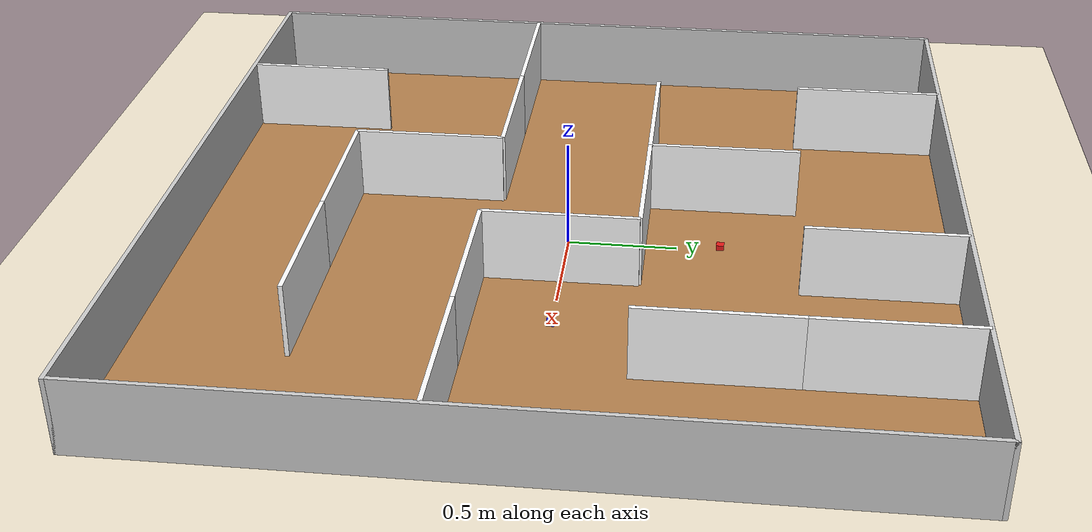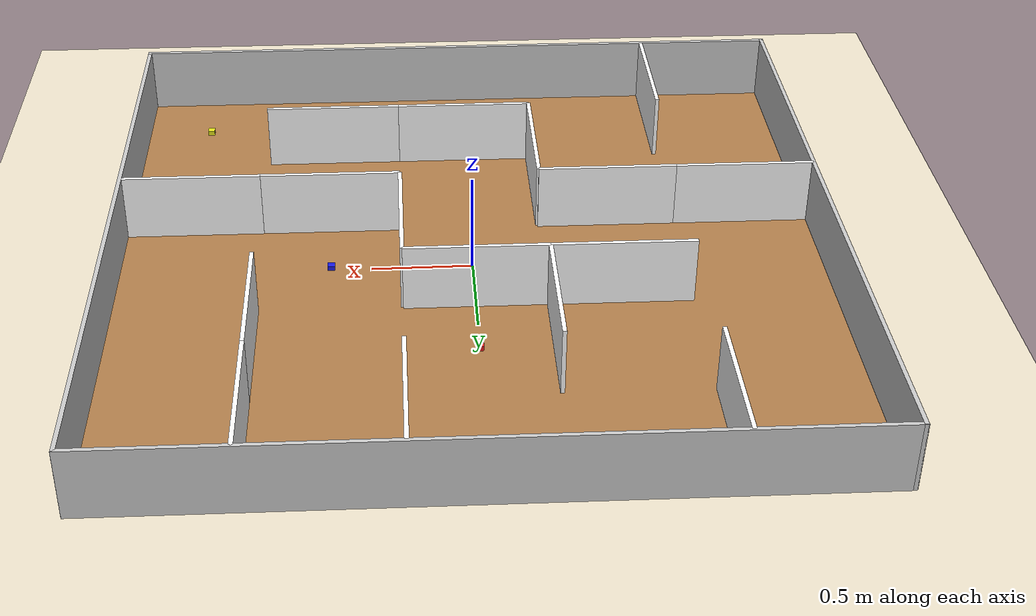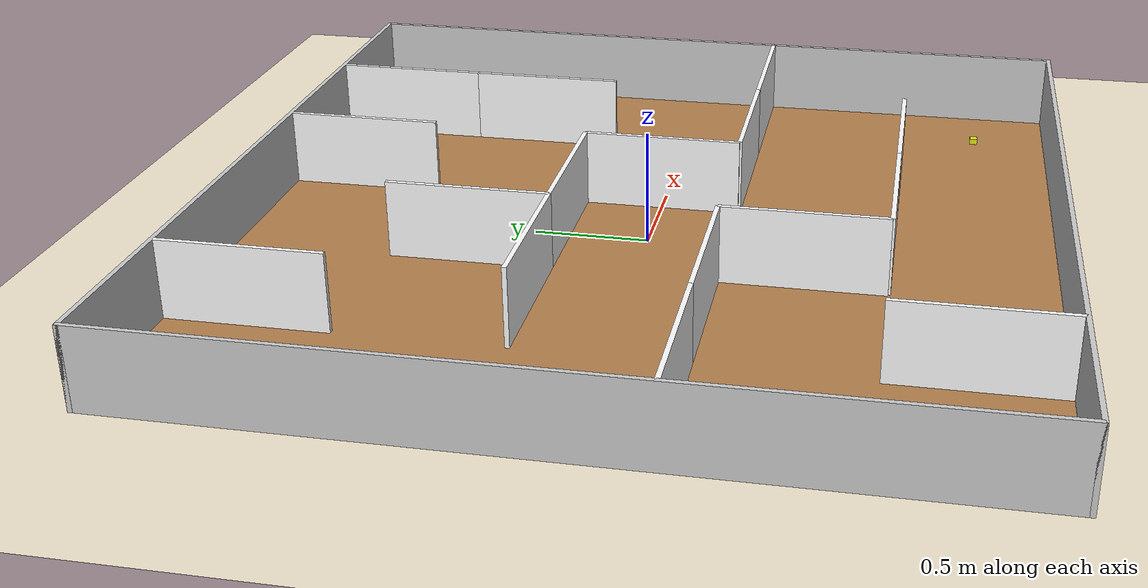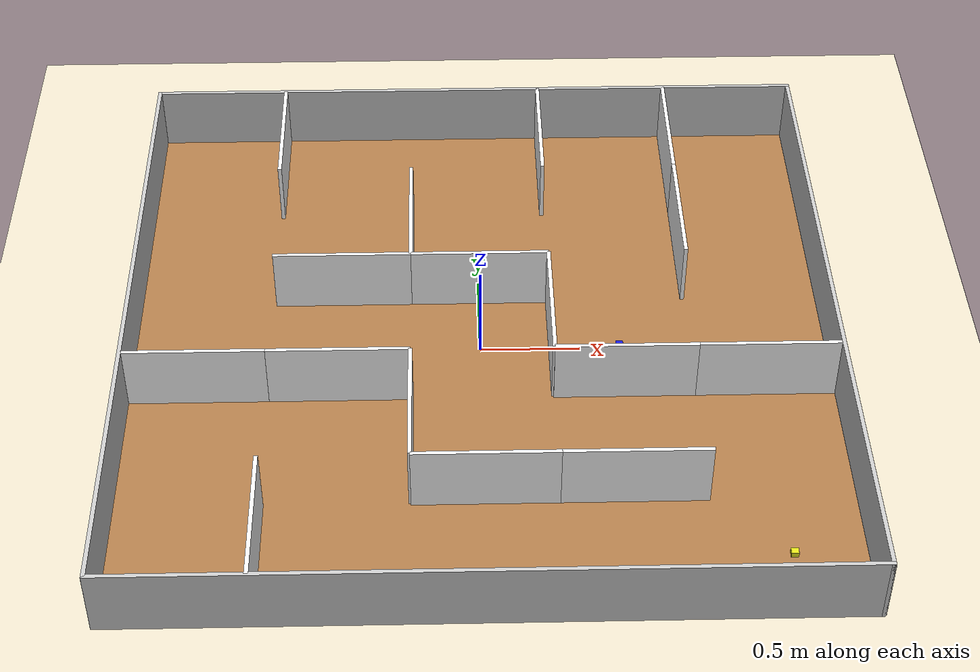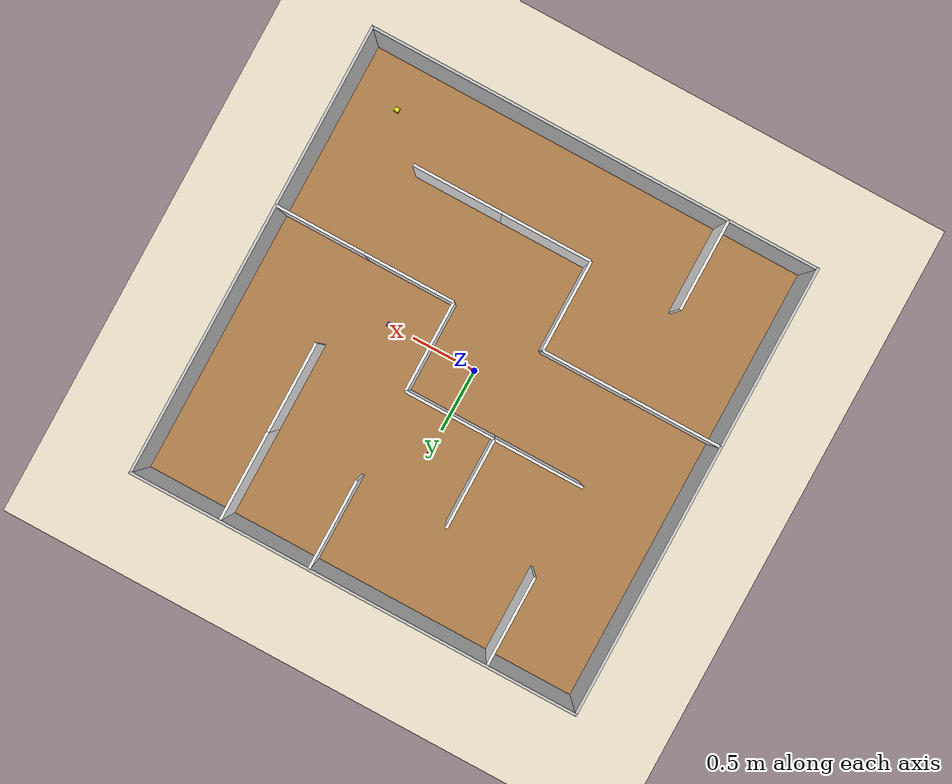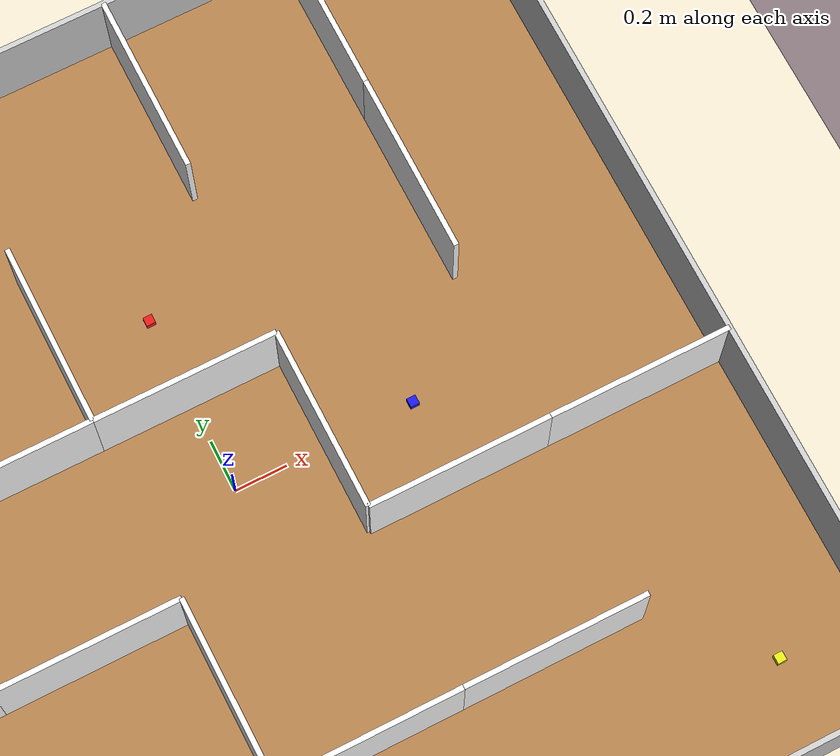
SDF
<?xml version="1.0" ?>
<sdf version="1.6">
  <world name="robot_world">
    <physics name="1ms" type="ignored">
      <max_step_size>0.001</max_step_size>
      <real_time_factor>1.0</real_time_factor>
      <real_time_update_rate>1000</real_time_update_rate>
    </physics>
    <plugin
      filename="ignition-gazebo-physics-system"
      name="gz::sim::systems::Physics">
      <engine>
        <filename>ignition-physics-dartsim-plugin</filename>
      </engine>
      <solver>
        <iterations>50</iterations>
      </solver>
    </plugin>
    <plugin
      filename="ignition-gazebo-user-commands-system"
      name="gz::sim::systems::UserCommands">
    </plugin>
    <plugin
      filename="ignition-gazebo-scene-broadcaster-system"
      name="gz::sim::systems::SceneBroadcaster">
    </plugin>
    <plugin
      filename="ignition-gazebo-contact-system"
      name="gz::sim::systems::Contact">
    </plugin>
    <gui fullscreen="0">
          <!-- 3D scene -->
          <plugin filename="MinimalScene" name="3D View">
            <gz-gui>
              <title>3D View</title>
              <property type="bool" key="showTitleBar">false</property>
              <property type="string" key="state">docked</property>
            </gz-gui>
            <engine>ogre2</engine>
            <scene>scene</scene>
            <ambient_light>0.4 0.4 0.4</ambient_light>
            <background_color>0.8 0.8 0.8</background_color>
            <camera_pose>-3.5 0 6 0 1.27 0</camera_pose>
            <camera_clip>
              <near>0.25</near>
              <far>25000</far>
            </camera_clip>
          </plugin>

          <!-- Insert simple shapes -->
          <plugin filename="Shapes" name="Shapes">
            <gz-gui>
              <property key="resizable" type="bool">false</property>
              <property key="x" type="double">0</property>
              <property key="y" type="double">0</property>
              <property key="width" type="double">250</property>
              <property key="height" type="double">50</property>
              <property key="state" type="string">floating</property>
              <property key="showTitleBar" type="bool">false</property>
              <property key="cardBackground" type="string">#666666</property>
            </gz-gui>
          </plugin>
          <!-- Translate / rotate -->
          <plugin filename="TransformControl" name="Transform control">
            <gz-gui>
              <property key="resizable" type="bool">false</property>
              <property key="x" type="double">0</property>
              <property key="y" type="double">50</property>
              <property key="width" type="double">250</property>
              <property key="height" type="double">50</property>
              <property key="state" type="string">floating</property>
              <property key="showTitleBar" type="bool">false</property>
              <property key="cardBackground" type="string">#777777</property>
            </gz-gui>
          </plugin>

          <!-- Entity tree -->
          <plugin filename="EntityTree" name="Entity tree">
            <gz-gui>
              <property type="string" key="state">docked_collapsed</property>
            </gz-gui>
          </plugin>

          <!-- Inspector -->
          <plugin filename="ComponentInspector" name="Component inspector">
            <gz-gui>
              <property type="string" key="state">docked_collapsed</property>
            </gz-gui>
          </plugin>

          <!-- World control -->
          <plugin filename="WorldControl" name="World control">
            <gz-gui>
              <title>World control</title>
              <property type="bool" key="showTitleBar">false</property>
              <property type="bool" key="resizable">false</property>
              <property type="double" key="height">72</property>
              <property type="double" key="width">121</property>
              <property type="double" key="z">1</property>

              <property type="string" key="state">floating</property>
              <anchors target="3D View">
                <line own="left" target="left"/>
                <line own="bottom" target="bottom"/>
              </anchors>
            </gz-gui>

            <play_pause>true</play_pause>
            <step>true</step>
            <start_paused>true</start_paused>
            <use_event>true</use_event>

          </plugin>

          <!-- Teleop -->
          <plugin filename="Teleop" name="ignition::gui::plugins::Teleop">
            <topic>/controller/cmd_vel</topic>
            <ignition-gui>
              <property type="bool" key="showTitleBar">true</property>
              <property type="string" key="state">docked</property>
              <property key="resizable" type="bool">true</property>
            </ignition-gui>
          </plugin>

          <!-- visualize lidar -->

          <!-- View angle -->
          <plugin filename="ViewAngle" name="View angle">
            <gz-gui>
              <property type="string" key="state">docked_collapsed</property>
            </gz-gui>
          </plugin>

          <!-- Plugins that add functionality to the scene -->
          <plugin filename="EntityContextMenuPlugin" name="Entity context menu">
          <gz-gui>
            <property key="state" type="string">floating</property>
            <property key="width" type="double">5</property>
            <property key="height" type="double">5</property>
            <property key="showTitleBar" type="bool">false</property>
          </gz-gui>
          </plugin>
          <plugin filename="GzSceneManager" name="Scene Manager">
          <gz-gui>
            <property key="resizable" type="bool">false</property>
            <property key="width" type="double">5</property>
            <property key="height" type="double">5</property>
            <property key="state" type="string">floating</property>
            <property key="showTitleBar" type="bool">false</property>
          </gz-gui>
          </plugin>
          <plugin filename="InteractiveViewControl" name="Interactive view control">
          <gz-gui>
            <property key="resizable" type="bool">false</property>
            <property key="width" type="double">5</property>
            <property key="height" type="double">5</property>
            <property key="state" type="string">floating</property>
            <property key="showTitleBar" type="bool">false</property>
          </gz-gui>
          </plugin>
          <plugin filename="CameraTracking" name="Camera Tracking">
          <gz-gui>
            <property key="resizable" type="bool">false</property>
            <property key="width" type="double">5</property>
            <property key="height" type="double">5</property>
            <property key="state" type="string">floating</property>
            <property key="showTitleBar" type="bool">false</property>
          </gz-gui>
          </plugin>
          <plugin filename="MarkerManager" name="Marker manager">
          <gz-gui>
            <property key="resizable" type="bool">false</property>
            <property key="width" type="double">5</property>
            <property key="height" type="double">5</property>
            <property key="state" type="string">floating</property>
            <property key="showTitleBar" type="bool">false</property>
          </gz-gui>
          </plugin>
          <plugin filename="SelectEntities" name="Select Entities">
          <gz-gui>
            <anchors target="Select entities">
              <line own="right" target="right"/>
              <line own="top" target="top"/>
            </anchors>
            <property key="resizable" type="bool">false</property>
            <property key="width" type="double">5</property>
            <property key="height" type="double">5</property>
            <property key="state" type="string">floating</property>
            <property key="showTitleBar" type="bool">false</property>
          </gz-gui>
          </plugin>
          <plugin filename="VisualizationCapabilities" name="Visualization Capabilities">
          <gz-gui>
            <property key="resizable" type="bool">false</property>
            <property key="width" type="double">5</property>
            <property key="height" type="double">5</property>
            <property key="state" type="string">floating</property>
            <property key="showTitleBar" type="bool">false</property>
          </gz-gui>
          </plugin>

          <plugin filename="Spawn" name="Spawn Entities">
          <gz-gui>
            <anchors target="Select entities">
              <line own="right" target="right"/>
              <line own="top" target="top"/>
            </anchors>
            <property key="resizable" type="bool">false</property>
            <property key="width" type="double">5</property>
            <property key="height" type="double">5</property>
            <property key="state" type="string">floating</property>
            <property key="showTitleBar" type="bool">false</property>
          </gz-gui>
          </plugin>

          <!-- World statistics -->
          <plugin filename="WorldStats" name="World stats">
          <gz-gui>
            <title>World stats</title>
            <property type="bool" key="showTitleBar">false</property>
            <property type="bool" key="resizable">false</property>
            <property type="double" key="height">110</property>
            <property type="double" key="width">290</property>
            <property type="double" key="z">1</property>

            <property type="string" key="state">floating</property>
            <anchors target="3D View">
              <line own="right" target="right"/>
              <line own="bottom" target="bottom"/>
            </anchors>
          </gz-gui>

          <sim_time>true</sim_time>
          <real_time>true</real_time>
          <real_time_factor>true</real_time_factor>
          <iterations>true</iterations>
          </plugin>

          <!-- Insert lights -->
          <plugin filename="Lights" name="Lights">
          <gz-gui>
            <property key="resizable" type="bool">false</property>
            <property key="x" type="double">250</property>
            <property key="y" type="double">0</property>
            <property key="width" type="double">150</property>
            <property key="height" type="double">50</property>
            <property key="state" type="string">floating</property>
            <property key="showTitleBar" type="bool">false</property>
            <property key="cardBackground" type="string">#666666</property>
          </gz-gui>
          </plugin>

          <!-- Screenshot -->
          <plugin filename="Screenshot" name="Screenshot">
          <gz-gui>
            <property key="resizable" type="bool">false</property>
            <property key="x" type="double">250</property>
            <property key="y" type="double">50</property>
            <property key="width" type="double">50</property>
            <property key="height" type="double">50</property>
            <property key="state" type="string">floating</property>
            <property key="showTitleBar" type="bool">false</property>
            <property key="cardBackground" type="string">#777777</property>
          </gz-gui>
          </plugin>

    </gui>
    <scene>
      <ambient>1.0 1.0 1.0</ambient>
      <background>0.8 0.8 0.8</background>
    </scene>
    <light type="directional" name="sun">
      <cast_shadows>true</cast_shadows>
      <pose>0 0 10 0 0 0</pose>
      <diffuse>0.8 0.8 0.8 1</diffuse>
      <specular>0.2 0.2 0.2 1</specular>
      <attenuation>
        <range>1000</range>
        <constant>0.9</constant>
        <linear>0.01</linear>
        <quadratic>0.001</quadratic>
      </attenuation>
      <direction>-0.5 0.1 -0.9</direction>
    </light>

    <model name="ground_plane">
      <static>true</static>
      <link name="link">
        <collision name="collision">
          <geometry>
            <plane>
              <normal>0 0 1</normal>
              <size>100 100</size>
            </plane>
          </geometry>
        </collision>
        <visual name="visual">
          <geometry>
            <plane>
              <normal>0 0 1</normal>
              <size>100 100</size>
            </plane>
          </geometry>
          <material>
            <ambient>0.94 0.90 0.81 1</ambient>
            <diffuse>0.94 0.90 0.81 1</diffuse>
            <specular>1 1 1 0</specular>
          </material>
        </visual>
      </link>
    </model>

    <!-- 迷宫模型 - 替换原来的RoboCup_Home -->
    <model name='maze_5x5_complex_connected'>
      <static>true</static>
      <pose>0 0 0 0 0 0</pose>
      <link name='maze_link'>

        <!-- === 地板与标记 === -->
        <visual name='floor_main'>
          <pose>0 0 0.005 0 0 0</pose>
          <geometry><box><size>3.5 3.5 0.01</size></box></geometry>
          <material><script><uri>file://media/materials/scripts/gazebo.material</uri><name>Gazebo/WoodFloor</name></script></material>
        </visual>
        <!-- 起点标记 (中心位置) -->
        <visual name='start_mark'>
          <pose>0 0 0.006 0 0 0</pose>
          <geometry><box><size>0.3 0.3 0.001</size></box></geometry>
          <material><ambient>0 1 0 1</ambient><diffuse>0 1 0 1</diffuse></material>
        </visual>
        <!-- 终点标记 -->
        <visual name='end_mark'>
          <pose>1.4 1.4 0.006 0 0 0</pose>
          <geometry><box><size>0.3 0.3 0.001</size></box></geometry>
          <material><ambient>1 0 0 1</ambient><diffuse>1 0 0 1</diffuse></material>
        </visual>

        <!-- 外墙 -->
        <visual name='wall_n'><pose>0 1.75 0.175 0 0 0</pose><geometry><box><size>3.52 0.02 0.35</size></box></geometry><material><ambient>0.8 0.8 0.8 1</ambient><diffuse>0.8 0.8 0.8 1</diffuse><specular>0.8 0.8 0.8 1</specular></material></visual>
        <collision name='col_n'><pose>0 1.75 0.175 0 0 0</pose><geometry><box><size>3.52 0.02 0.35</size></box></geometry></collision>
        <visual name='wall_s'><pose>0 -1.75 0.175 0 0 0</pose><geometry><box><size>3.52 0.02 0.35</size></box></geometry><material><ambient>0.8 0.8 0.8 1</ambient><diffuse>0.8 0.8 0.8 1</diffuse><specular>0.8 0.8 0.8 1</specular></material></visual>
        <collision name='col_s'><pose>0 -1.75 0.175 0 0 0</pose><geometry><box><size>3.52 0.02 0.35</size></box></geometry></collision>
        <visual name='wall_w'><pose>-1.75 0 0.175 0 0 0</pose><geometry><box><size>0.02 3.52 0.35</size></box></geometry><material><ambient>0.8 0.8 0.8 1</ambient><diffuse>0.8 0.8 0.8 1</diffuse><specular>0.8 0.8 0.8 1</specular></material></visual>
        <collision name='col_w'><pose>-1.75 0 0.175 0 0 0</pose><geometry><box><size>0.02 3.52 0.35</size></box></geometry></collision>
        <visual name='wall_e'><pose>1.75 0 0.175 0 0 0</pose><geometry><box><size>0.02 3.52 0.35</size></box></geometry><material><ambient>0.8 0.8 0.8 1</ambient><diffuse>0.8 0.8 0.8 1</diffuse><specular>0.8 0.8 0.8 1</specular></material></visual>
        <collision name='col_e'><pose>1.75 0 0.175 0 0 0</pose><geometry><box><size>0.02 3.52 0.35</size></box></geometry></collision>

        <!-- === 内部墙体 (Internal Walls) === -->
        <!-- 调整到70×70栅格，按照提供的迷宫布局 -->

        <!-- 纵向墙 (Vertical Walls) -->
        <!-- Row 0 (最下行) -->
        <visual name='v_r0_c01'> <pose>-1.05 -1.4 0.175 0 0 0</pose> <geometry><box><size>0.02 0.7 0.35</size></box></geometry> <material><ambient>1 1 1 1</ambient><diffuse>1 1 1 1</diffuse></material> </visual>
        <collision name='c_v_r0_c01'> <pose>-1.05 -1.4 0.175 0 0 0</pose> <geometry><box><size>0.02 0.7 0.35</size></box></geometry> </collision>

        <!-- Row 1 -->
        <visual name='v_r1_c12'> <pose>-0.35 -0.7 0.175 0 0 0</pose> <geometry><box><size>0.02 0.7 0.35</size></box></geometry> <material><ambient>1 1 1 1</ambient><diffuse>1 1 1 1</diffuse></material> </visual>
        <collision name='c_v_r1_c12'> <pose>-0.35 -0.7 0.175 0 0 0</pose> <geometry><box><size>0.02 0.7 0.35</size></box></geometry> </collision>

        <!-- Row 2 (中间行) -->
        <visual name='v_r2_c23'> <pose>0.35 0.0 0.175 0 0 0</pose> <geometry><box><size>0.02 0.7 0.35</size></box></geometry> <material><ambient>1 1 1 1</ambient><diffuse>1 1 1 1</diffuse></material> </visual>
        <collision name='c_v_r2_c23'> <pose>0.35 0.0 0.175 0 0 0</pose> <geometry><box><size>0.02 0.7 0.35</size></box></geometry> </collision>

        <!-- Row 3 -->
        <visual name='v_r3_c12'> <pose>-0.35 0.7 0.175 0 0 0</pose> <geometry><box><size>0.02 0.7 0.35</size></box></geometry> <material><ambient>1 1 1 1</ambient><diffuse>1 1 1 1</diffuse></material> </visual>
        <collision name='c_v_r3_c12'> <pose>-0.35 0.7 0.175 0 0 0</pose> <geometry><box><size>0.02 0.7 0.35</size></box></geometry> </collision>

        <visual name='v_r3_c34'> <pose>1.05 0.7 0.175 0 0 0</pose> <geometry><box><size>0.02 0.7 0.35</size></box></geometry> <material><ambient>1 1 1 1</ambient><diffuse>1 1 1 1</diffuse></material> </visual>
        <collision name='c_v_r3_c34'> <pose>1.05 0.7 0.175 0 0 0</pose> <geometry><box><size>0.02 0.7 0.35</size></box></geometry> </collision>

        <!-- Row 4 (最上行) -->
        <visual name='v_r4_c01'> <pose>-1.05 1.4 0.175 0 0 0</pose> <geometry><box><size>0.02 0.7 0.35</size></box></geometry> <material><ambient>1 1 1 1</ambient><diffuse>1 1 1 1</diffuse></material> </visual>
        <collision name='c_v_r4_c01'> <pose>-1.05 1.4 0.175 0 0 0</pose> <geometry><box><size>0.02 0.7 0.35</size></box></geometry> </collision>

        <visual name='v_r4_c23'> <pose>0.35 1.4 0.175 0 0 0</pose> <geometry><box><size>0.02 0.7 0.35</size></box></geometry> <material><ambient>1 1 1 1</ambient><diffuse>1 1 1 1</diffuse></material> </visual>
        <collision name='c_v_r4_c23'> <pose>0.35 1.4 0.175 0 0 0</pose> <geometry><box><size>0.02 0.7 0.35</size></box></geometry> </collision>

        <visual name='v_r4_c34'> <pose>1.05 1.4 0.175 0 0 0</pose> <geometry><box><size>0.02 0.7 0.35</size></box></geometry> <material><ambient>1 1 1 1</ambient><diffuse>1 1 1 1</diffuse></material> </visual>
        <collision name='c_v_r4_c34'> <pose>1.05 1.4 0.175 0 0 0</pose> <geometry><box><size>0.02 0.7 0.35</size></box></geometry> </collision>

        <!-- 横向墙 (Horizontal Walls) -->
        <!-- Col 0 (最左列) -->
        <visual name='h_c0_r12'> <pose>-1.4 -0.35 0.175 0 0 0</pose> <geometry><box><size>0.7 0.02 0.35</size></box></geometry> <material><ambient>1 1 1 1</ambient><diffuse>1 1 1 1</diffuse></material> </visual>
        <collision name='c_h_c0_r12'> <pose>-1.4 -0.35 0.175 0 0 0</pose> <geometry><box><size>0.7 0.02 0.35</size></box></geometry> </collision>

        <!-- Col 1 -->
        <visual name='h_c1_r12'> <pose>-0.7 -0.35 0.175 0 0 0</pose> <geometry><box><size>0.7 0.02 0.35</size></box></geometry> <material><ambient>1 1 1 1</ambient><diffuse>1 1 1 1</diffuse></material> </visual>
        <collision name='c_h_c1_r12'> <pose>-0.7 -0.35 0.175 0 0 0</pose> <geometry><box><size>0.7 0.02 0.35</size></box></geometry> </collision>

        <visual name='h_c1_r23'> <pose>-0.7 0.35 0.175 0 0 0</pose> <geometry><box><size>0.7 0.02 0.35</size></box></geometry> <material><ambient>1 1 1 1</ambient><diffuse>1 1 1 1</diffuse></material> </visual>
        <collision name='c_h_c1_r23'> <pose>-0.7 0.35 0.175 0 0 0</pose> <geometry><box><size>0.7 0.02 0.35</size></box></geometry> </collision>

        <!-- Col 2 (中间列) -->
        <visual name='h_c2_r01'> <pose>0.0 -1.05 0.175 0 0 0</pose> <geometry><box><size>0.7 0.02 0.35</size></box></geometry> <material><ambient>1 1 1 1</ambient><diffuse>1 1 1 1</diffuse></material> </visual>
        <collision name='c_h_c2_r01'> <pose>0.0 -1.05 0.175 0 0 0</pose> <geometry><box><size>0.7 0.02 0.35</size></box></geometry> </collision>

        <visual name='h_c2_r23'> <pose>0.0 0.35 0.175 0 0 0</pose> <geometry><box><size>0.7 0.02 0.35</size></box></geometry> <material><ambient>1 1 1 1</ambient><diffuse>1 1 1 1</diffuse></material> </visual>
        <collision name='c_h_c2_r23'> <pose>0.0 0.35 0.175 0 0 0</pose> <geometry><box><size>0.7 0.02 0.35</size></box></geometry> </collision>

        <!-- Col 3 -->
        <visual name='h_c3_r01'> <pose>0.7 -1.05 0.175 0 0 0</pose> <geometry><box><size>0.7 0.02 0.35</size></box></geometry> <material><ambient>1 1 1 1</ambient><diffuse>1 1 1 1</diffuse></material> </visual>
        <collision name='c_h_c3_r01'> <pose>0.7 -1.05 0.175 0 0 0</pose> <geometry><box><size>0.7 0.02 0.35</size></box></geometry> </collision>

        <visual name='h_c3_r12'> <pose>0.7 -0.35 0.175 0 0 0</pose> <geometry><box><size>0.7 0.02 0.35</size></box></geometry> <material><ambient>1 1 1 1</ambient><diffuse>1 1 1 1</diffuse></material> </visual>
        <collision name='c_h_c3_r12'> <pose>0.7 -0.35 0.175 0 0 0</pose> <geometry><box><size>0.7 0.02 0.35</size></box></geometry> </collision>

        <!-- Col 4 (最右列) -->
        <visual name='h_c4_r12'> <pose>1.4 -0.35 0.175 0 0 0</pose> <geometry><box><size>0.7 0.02 0.35</size></box></geometry> <material><ambient>1 1 1 1</ambient><diffuse>1 1 1 1</diffuse></material> </visual>
        <collision name='c_h_c4_r12'> <pose>1.4 -0.35 0.175 0 0 0</pose> <geometry><box><size>0.7 0.02 0.35</size></box></geometry> </collision>
      </link>
    </model>

    <!-- Demo pickup block: red cube at robot origin frame -->
    <model name='demo_block_red'>
      <pose>0.0 0.7 0.0175 0 0 0</pose>
      <static>false</static>
      <link name='body'>
        <inertial>
          <mass>0.03</mass>
          <inertia>
            <ixx>6.1e-06</ixx>
            <iyy>6.1e-06</iyy>
            <izz>6.1e-06</izz>
          </inertia>
        </inertial>
        <collision name='collision'>
          <geometry>
            <box>
              <size>0.035 0.035 0.035</size>
            </box>
          </geometry>
          <surface>
            <contact>
              <collide_bitmask>0xff</collide_bitmask>
              <ode>
                <kp>200000.0</kp>
                <kd>1000.0</kd>
                <max_vel>0.05</max_vel>
                <min_depth>0.001</min_depth>
              </ode>
            </contact>
            <friction>
              <ode>
                <mu>20.0</mu>
                <mu2>20.0</mu2>
                <slip1>0.0</slip1>
                <slip2>0.0</slip2>
              </ode>
              <torsional>
                <coefficient>10.0</coefficient>
                <use_patch_radius>true</use_patch_radius>
                <patch_radius>0.005</patch_radius>
              </torsional>
            </friction>
          </surface>
        </collision>
        <visual name='visual'>
          <geometry>
            <box>
              <size>0.035 0.035 0.035</size>
            </box>
          </geometry>
          <material>
            <ambient>0.9 0.1 0.1 1</ambient>
            <diffuse>0.9 0.1 0.1 1</diffuse>
          </material>
        </visual>
      </link>
    </model>

    <!-- Yellow cube elsewhere in maze -->
    <model name='demo_block_yellow'>
      <pose>1.4 -1.4 0.020 0 0 0</pose>
      <static>false</static>
      <link name='body'>
        <inertial>
          <mass>0.03</mass>
          <inertia>
            <ixx>6.1e-06</ixx>
            <iyy>6.1e-06</iyy>
            <izz>6.1e-06</izz>
          </inertia>
        </inertial>
        <collision name='collision'>
          <geometry>
            <box>
              <size>0.035 0.035 0.035</size>
            </box>
          </geometry>
          <surface>
            <contact>
              <collide_bitmask>0xff</collide_bitmask>
              <ode>
                <kp>200000.0</kp>
                <kd>1000.0</kd>
                <max_vel>0.05</max_vel>
                <min_depth>0.001</min_depth>
              </ode>
            </contact>
            <friction>
              <ode>
                <mu>20.0</mu>
                <mu2>20.0</mu2>
                <slip1>0.0</slip1>
                <slip2>0.0</slip2>
              </ode>
              <torsional>
                <coefficient>10.0</coefficient>
                <use_patch_radius>true</use_patch_radius>
                <patch_radius>0.005</patch_radius>
              </torsional>
            </friction>
          </surface>
        </collision>
        <visual name='visual'>
          <geometry>
            <box>
              <size>0.035 0.035 0.035</size>
            </box>
          </geometry>
          <material>
            <ambient>0.9 0.9 0.1 1</ambient>
            <diffuse>0.9 0.9 0.1 1</diffuse>
          </material>
        </visual>
      </link>
    </model>

    <!-- Additional blue cube elsewhere in maze -->
    <model name='demo_block_blue'>
      <pose>0.7 0.0 0.0175 0 0 0</pose>
      <static>false</static>
      <link name='body'>
        <inertial>
          <mass>0.03</mass>
          <inertia>
            <ixx>6.1e-06</ixx>
            <iyy>6.1e-06</iyy>
            <izz>6.1e-06</izz>
          </inertia>
        </inertial>
        <collision name='collision'>
          <geometry>
            <box>
              <size>0.035 0.035 0.035</size>
            </box>
          </geometry>
          <surface>
            <contact>
              <collide_bitmask>0xff</collide_bitmask>
              <ode>
                <kp>200000.0</kp>
                <kd>1000.0</kd>
                <max_vel>0.05</max_vel>
                <min_depth>0.001</min_depth>
              </ode>
            </contact>
            <friction>
              <ode>
                <mu>20.0</mu>
                <mu2>20.0</mu2>
                <slip1>0.0</slip1>
                <slip2>0.0</slip2>
              </ode>
              <torsional>
                <coefficient>10.0</coefficient>
                <use_patch_radius>true</use_patch_radius>
                <patch_radius>0.005</patch_radius>
              </torsional>
            </friction>
          </surface>
        </collision>
        <visual name='visual'>
          <geometry>
            <box>
              <size>0.035 0.035 0.035</size>
            </box>
          </geometry>
          <material>
            <ambient>0.1 0.1 0.9 1</ambient>
            <diffuse>0.1 0.1 0.9 1</diffuse>
          </material>
        </visual>
      </link>
    </model>
  </world>
</sdf>
